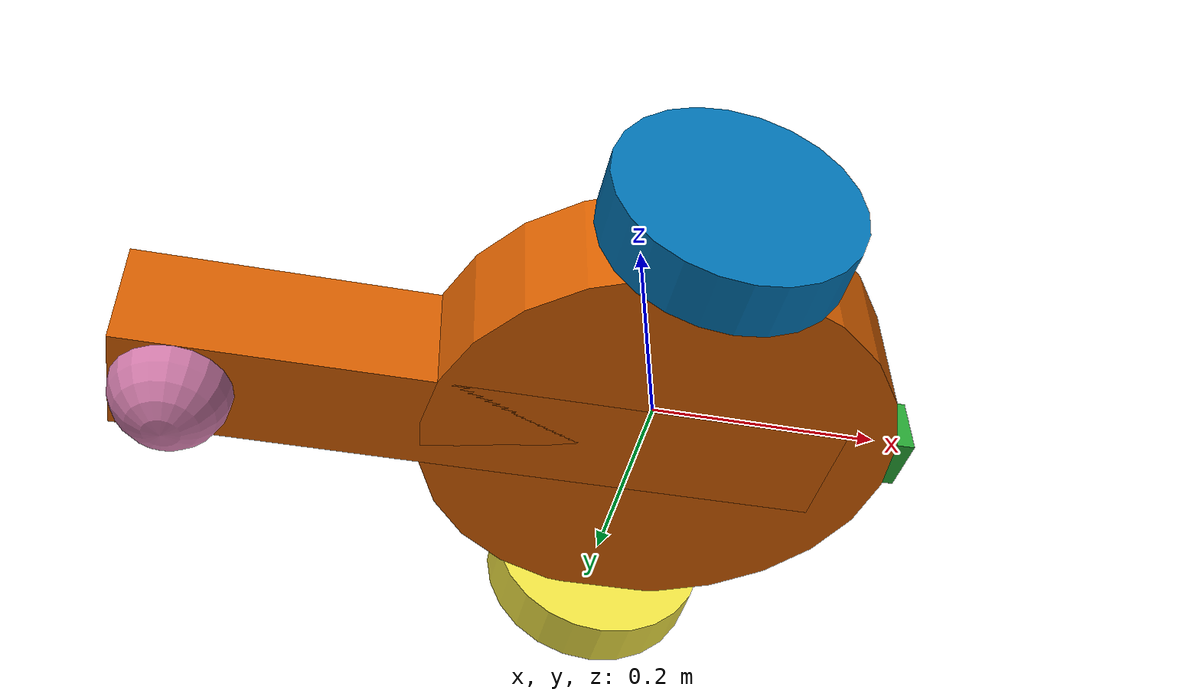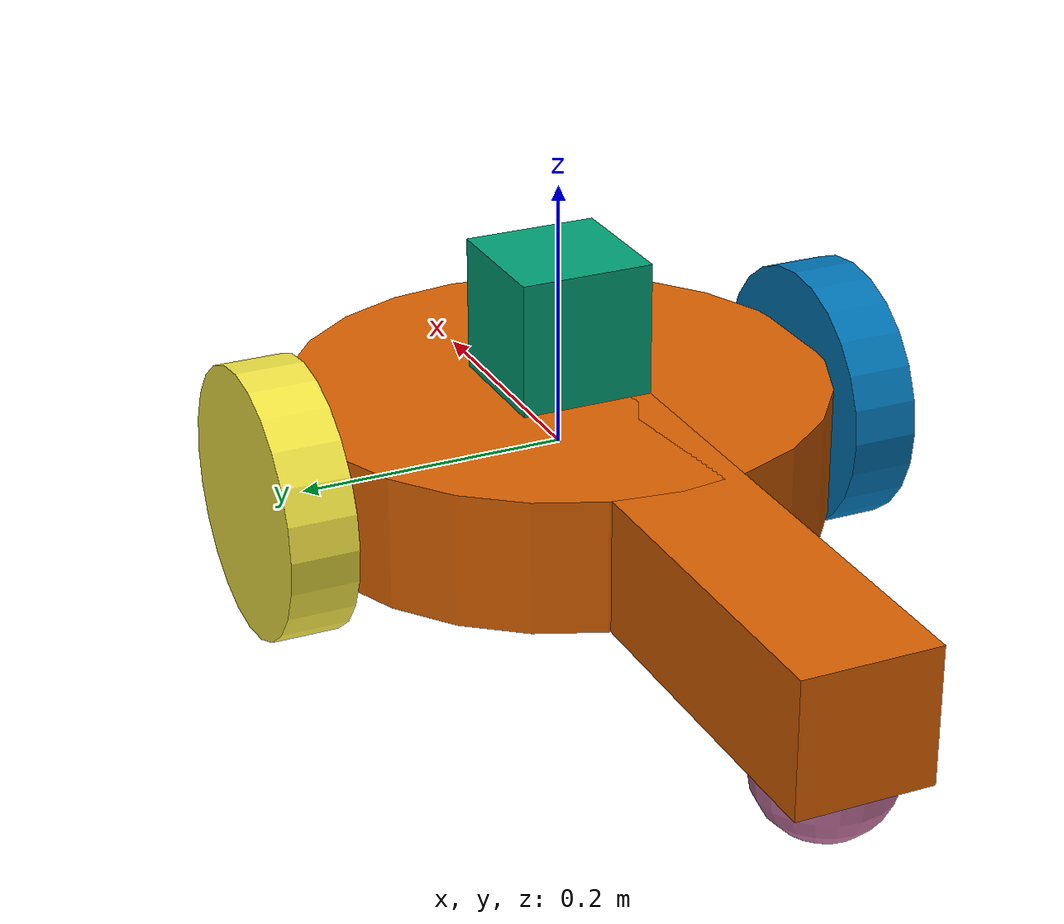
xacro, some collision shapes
<?xml version='1.0'?>

<robot name="udacity_bot" xmlns:xacro="http://www.ros.org/wiki/xacro">

  <xacro:include filename="$(find slam_project)/urdf/udacity_bot.gazebo" />
  <link name="robot_footprint"></link>

  <joint name="robot_footprint_joint" type="fixed">
    <origin xyz="0 0 0" rpy="0 0 0" />
    <parent link="robot_footprint"/>
    <child link="base_link" />
  </joint>

  <joint type="fixed" name="camera_joint">
    <origin xyz="0.2 0 0" rpy="0 0 0"/>
    <child link="camera_link"/>
    <parent link="base_link"/>
  </joint>

  <link name='camera_link'>
    <visual>
        <origin xyz="0 0 0" rpy="0 0 0"/>
      <geometry>
        <box size=".05 .05 .05"/>
      </geometry>
    </visual>
    <collision name='camera_collision'>
      <origin xyz="0 0 0" rpy="0 0 0"/>
      <geometry>
        <box size=".05 .05 .05"/>
      </geometry>
    </collision>
    <inertial>
      <mass value="0.1"/>
      <origin xyz="0 0 0" rpy="0 0 0"/>
      <inertia
          ixx="1e-6" ixy="0" ixz="0"
          iyy="1e-6" iyz="0"
          izz="1e-6"
      />
    </inertial>
  </link>

  <joint type="fixed" name="hokuyo_joint">
    <!--origin xyz="0.15 0 0.1" rpy="0 0 0"/-->
    <origin xyz="0 0 0.1" rpy="0 0 0"/>
    <child link="hokuyo"/>
    <parent link="base_link"/>
  </joint>

  <link name='hokuyo'>
    <visual>
      <origin xyz="0 0 0" rpy="0 0 0"/>
      <geometry>
          <mesh filename="/home/robond/catkin_ws/src/udacity_bot/meshes/hokuyo.dae" />
      </geometry>
    </visual>
    <collision name='hokuyo_collision'>
      <origin xyz="0 0 0" rpy="0 0 0"/>
      <geometry>
        <box size=".1 .1 .1"/>
      </geometry>
    </collision>
    <inertial>
      <mass value="0.1"/>
      <origin xyz="0 0 0" rpy="0 0 0"/>
      <inertia
          ixx="1e-6" ixy="0" ixz="0"
          iyy="1e-6" iyz="0"
          izz="1e-6"
      />
    </inertial>
  </link>

  <joint type="continuous" name="left_wheel_hinge">
    <origin xyz="0 0.22 0" rpy="0 0 0"/>
    <child link="left_wheel"/>
    <parent link="base_link"/>
    <axis xyz="0 1 0" rpy="0 0 0"/>
    <limit effort="10000" velocity="1000"/>
    <joint_properties damping="1.0" friction="1.0"/>
  </joint>

  <joint type="continuous" name="right_wheel_hinge">
    <origin xyz="0 -.22 0" rpy="0 0 0"/>
    <!--origin xyz="-.1 -0.15 0" rpy="0 0 0"/-->
    <child link="right_wheel"/>
    <parent link="base_link"/>
    <axis xyz="0 1 0" rpy="0 0 0"/>
    <limit effort="10000" velocity="1000"/>
    <joint_properties damping="1.0" friction="1.0"/>
  </joint>

  <link name='left_wheel'>
    <visual>
      <origin xyz="0 0 0" rpy="0 1.5707 1.5707"/>
      <geometry>
          <cylinder length="0.05" radius="0.1"/>
      </geometry>
    </visual>
    <collision name='left_wheel_collision'>
        <origin xyz="0 0 0" rpy="0 1.5707 1.5707"/>
      <geometry>
          <cylinder length="0.05" radius="0.1"/>
      </geometry>
    </collision>
    <inertial>
      <mass value="5.0"/>
      <origin xyz="0 0 0" rpy="0 1.5707 1.5707"/>
      <inertia
          ixx="0.1" ixy="0" ixz="0"
          iyy="0.1" iyz="0"
          izz="0.1"
      />
    </inertial>
  </link>

  <link name='right_wheel'>
    <visual>
        <origin xyz="0 0 0" rpy="0 1.5707 1.5707"/>
      <geometry>
          <cylinder length="0.05" radius="0.1"/>
      </geometry>
    </visual>
    <collision name='right_wheel_collision'>
        <origin xyz="0 0 0" rpy="0 1.5707 1.5707"/>
      <geometry>
          <cylinder length="0.05" radius="0.1"/>
      </geometry>
    </collision>
    <inertial>
      <mass value="5.0"/>
      <origin xyz="0 0 0" rpy="0 1.5707 1.5707"/>
      <inertia
          ixx="0.1" ixy="0" ixz="0"
          iyy="0.1" iyz="0"
          izz="0.1"
      />
    </inertial>
  </link>

  <link name='base_link'>
    <pose>0 0 0.1 0 0 0</pose>

    <inertial>
      <mass value="15.0"/>
      <origin xyz="0.0 0 0" rpy=" 0 0 0"/>
      <inertia
          ixx="0.1" ixy="0" ixz="0"
          iyy="0.1" iyz="0"
          izz="0.1"
      />
    </inertial>

    <collision name='collision'>
      <origin xyz="0 0 0" rpy=" 0 0 0"/>
      <geometry>
        <cylinder length="0.1" radius="0.2"/>
      </geometry>
    </collision>

    <visual name='chassis_visual'>
      <origin xyz="0 0 0" rpy=" 0 0 0"/>
      <geometry>
        <cylinder length="0.1" radius="0.2"/>
      </geometry>
    </visual>

    <collision name='tail'>
      <origin xyz="-.15 0 0" rpy=" 0 0 0"/>
      <geometry>
         <box size=".6 .1 .1"/>
      </geometry>
    </collision>

    <visual name='tail_visual'>
      <origin xyz="-.15 0 0" rpy=" 0 0 0"/>
      <geometry>
         <box size=".6 .1 .1"/>
      </geometry>
    </visual>

  </link>
  <joint type="fixed" name="back_caster_joint">
    <origin xyz="-0.4 0 -0.05" rpy=" 0 0 0"/>
    <child link="back_caster"/>
    <parent link="base_link"/>
  </joint>
  <link name="back_caster">
    <collision name='back_caster_collision'>
      <!--origin xyz="-0.4 0 -0.05" rpy=" 0 0 0"/-->
      <origin xyz="0 0 0" rpy=" 0 0 0"/>
      <geometry>
        <sphere radius="0.05"/>
      </geometry>
      <surface>
        <friction>
          <ode>
            <mu>0</mu>
            <mu2>0</mu2>
            <slip1>0.0</slip1>
            <slip2>0.0</slip2>
          </ode>
        </friction>
      </surface>
    </collision>

    <visual name='back_caster_visual'>
        <!--origin xyz="-0.4  0 -0.05" rpy=" 0 0 0"/-->
      <origin xyz="0 0 0" rpy=" 0 0 0"/>
      <geometry>
        <sphere radius="0.05"/>
      </geometry>
    </visual>
    <inertial>
      <mass value="0.4"/>
      <origin xyz="0 0 0" rpy="0 0 0"/>
      <inertia
          ixx="1e-6" ixy="0" ixz="0"
          iyy="1e-6" iyz="0"
          izz="1e-6"
      />
    </inertial>
  </link>

</robot>
